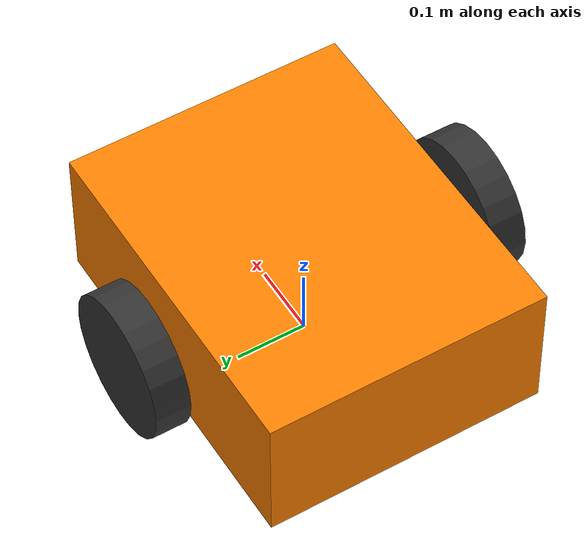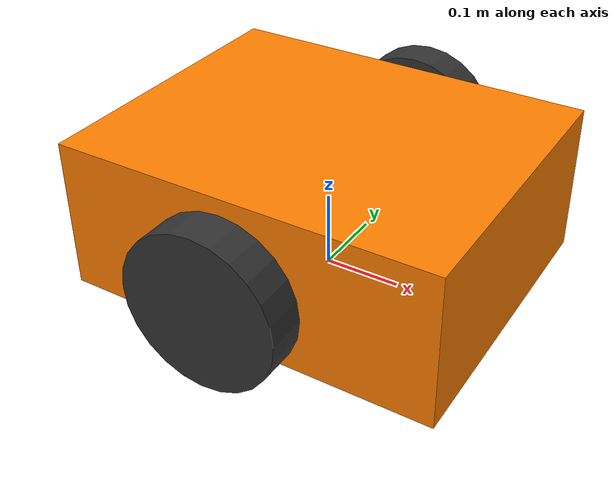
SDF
<?xml version="1.0"?>
<sdf version="1.9">
  <model name="courier_robot">
    <pose>0 0 0.1 0 0 0</pose>

    <!-- Base Link -->
    <link name="base_link">
      <inertial>
        <mass>10.0</mass>
        <inertia>
          <ixx>0.1</ixx>
          <iyy>0.1</iyy>
          <izz>0.1</izz>
        </inertia>
      </inertial>

      <collision name="collision">
        <geometry>
          <box>
            <size>0.5 0.4 0.2</size>
          </box>
        </geometry>
      </collision>

      <visual name="visual">
        <geometry>
          <box>
            <size>0.5 0.4 0.2</size>
          </box>
        </geometry>
        <material>
          <ambient>1 0.5 0 1</ambient>
          <diffuse>1 0.5 0 1</diffuse>
        </material>
      </visual>

      <!-- LiDAR Sensor for obstacle avoidance -->
      <sensor name="lidar" type="gpu_lidar">
        <pose>0 0 0.15 0 0 0</pose>
        <topic>/scan</topic>
        <update_rate>10</update_rate>
        <lidar>
          <scan>
            <horizontal>
              <samples>360</samples>
              <resolution>1</resolution>
              <min_angle>-3.14159</min_angle>
              <max_angle>3.14159</max_angle>
            </horizontal>
          </scan>
          <range>
            <min>0.1</min>
            <max>10.0</max>
            <resolution>0.01</resolution>
          </range>
          <noise>
            <type>gaussian</type>
            <mean>0.0</mean>
            <stddev>0.01</stddev>
          </noise>
        </lidar>
        <visualize>true</visualize>
      </sensor>

      <!-- Camera for AprilTag detection -->
      <sensor name="camera" type="camera">
        <pose>0.25 0 0.15 0 0.3 0</pose>
        <topic>/camera/image_raw</topic>
        <camera>
          <horizontal_fov>1.2</horizontal_fov>
          <image>
            <width>640</width>
            <height>480</height>
            <format>R8G8B8</format>
          </image>
          <clip>
            <near>0.1</near>
            <far>100</far>
          </clip>
          <noise>
            <type>gaussian</type>
            <mean>0.0</mean>
            <stddev>0.007</stddev>
          </noise>
        </camera>
        <update_rate>30</update_rate>
        <visualize>true</visualize>
      </sensor>
    </link>

    <!-- Left Wheel -->
    <link name="left_wheel">
      <pose>0 0.25 0 -1.5707 0 0</pose>
      <inertial>
        <mass>1.0</mass>
        <inertia>
          <ixx>0.01</ixx>
          <iyy>0.01</iyy>
          <izz>0.01</izz>
        </inertia>
      </inertial>
      <collision name="collision">
        <geometry>
          <cylinder>
            <radius>0.1</radius>
            <length>0.05</length>
          </cylinder>
        </geometry>
      </collision>
      <visual name="visual">
        <geometry>
          <cylinder>
            <radius>0.1</radius>
            <length>0.05</length>
          </cylinder>
        </geometry>
        <material>
          <ambient>0.2 0.2 0.2 1</ambient>
          <diffuse>0.2 0.2 0.2 1</diffuse>
        </material>
      </visual>
    </link>

    <!-- Right Wheel -->
    <link name="right_wheel">
      <pose>0 -0.25 0 -1.5707 0 0</pose>
      <inertial>
        <mass>1.0</mass>
        <inertia>
          <ixx>0.01</ixx>
          <iyy>0.01</iyy>
          <izz>0.01</izz>
        </inertia>
      </inertial>
      <collision name="collision">
        <geometry>
          <cylinder>
            <radius>0.1</radius>
            <length>0.05</length>
          </cylinder>
        </geometry>
      </collision>
      <visual name="visual">
        <geometry>
          <cylinder>
            <radius>0.1</radius>
            <length>0.05</length>
          </cylinder>
        </geometry>
        <material>
          <ambient>0.2 0.2 0.2 1</ambient>
          <diffuse>0.2 0.2 0.2 1</diffuse>
        </material>
      </visual>
    </link>

    <!-- Left Wheel Joint -->
    <joint name="left_wheel_joint" type="revolute">
      <parent>base_link</parent>
      <child>left_wheel</child>
      <axis>
        <xyz>0 0 1</xyz>
      </axis>
    </joint>

    <!-- Right Wheel Joint -->
    <joint name="right_wheel_joint" type="revolute">
      <parent>base_link</parent>
      <child>right_wheel</child>
      <axis>
        <xyz>0 0 1</xyz>
      </axis>
    </joint>

    <!-- Differential Drive Plugin -->
    <plugin filename="gz-sim-diff-drive-system" name="gz::sim::systems::DiffDrive">
      <left_joint>left_wheel_joint</left_joint>
      <right_joint>right_wheel_joint</right_joint>
      <wheel_separation>0.5</wheel_separation>
      <wheel_radius>0.1</wheel_radius>
      <odom_publish_frequency>30</odom_publish_frequency>
      <topic>/cmd_vel</topic>
      <odom_topic>/odom</odom_topic>
      <frame_id>odom</frame_id>
      <child_frame_id>base_link</child_frame_id>
    </plugin>

  </model>
</sdf>
